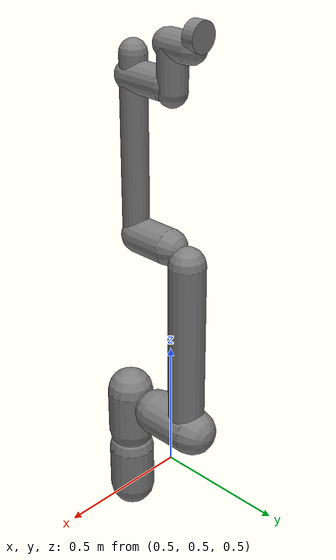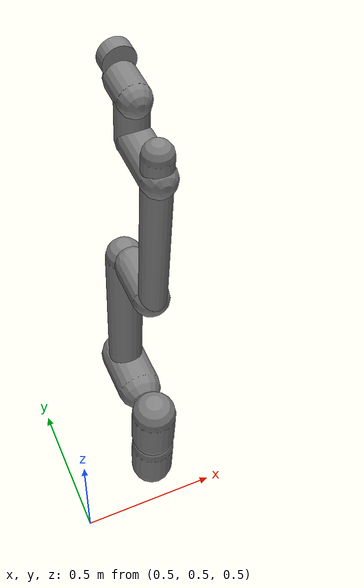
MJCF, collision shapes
<mujoco model="ur30">
  <compiler angle="radian" meshdir="../universal_robots_ur30/assets" autolimits="true"/>
  <option integrator="implicitfast"/>

  <default>
    <include file="../universal_robots_ur30/ur30_classes.xml"/>
  </default>

  <asset>
    <include file="../universal_robots_ur30/ur30_assets.xml" />
  </asset>

  <worldbody>
    <light name="spotlight" mode="targetbodycom" target="wrist_2_link" pos="0 -1 2"/>
    <body name="ur30_base" pos="0.8 0.6 0.745" quat="1 0 0 0" childclass="ur30">
      <inertial mass="4.0" pos="0 0 0" diaginertia="0.00443333156 0.00443333156 0.0072"/>
      <!-- fix duplicate definition, add base_0 -->
      <geom mesh="base_0" material="black" class="visual"/>
      <geom mesh="base_1" material="black" class="visual"/>
      <geom mesh="base_2" material="black" class="visual"/>
      <geom mesh="base_3" material="black" class="visual"/>
      <geom mesh="base_4" material="jointgray" class="visual"/>
      <geom mesh="base_5" material="jointgray" class="visual"/>
      <geom mesh="base_6" material="jointgray" class="visual"/>
      <!-- add collision geometry -->
      <geom class="collision" size="0.078 0.08" pos="0 0 -0.05"/>

      <body name="shoulder_link" pos="0 0 0.2363">
        <inertial pos="0 0 0" mass="16.343" diaginertia="0.0102675 0.0102675 0.00666" />
        <joint name="shoulder_pan_joint" class="size4" axis="0 0 1"/>
        <geom mesh="shoulder_0" material="urblue" class="visual"/>
        <geom mesh="shoulder_1" material="black" class="visual"/>
        <geom mesh="shoulder_2" material="jointgray" class="visual"/>
        <!-- add collision geometry -->
        <geom class="collision" size="0.078 0.08" pos="0 0 -0.05"/>

        <body name="upper_arm_link" pos="0 0.2629 0" quat="1 0 0 0">
          <inertial pos="0 0 -0.3185" mass="28.542" diaginertia="0.133886 0.133886 0.0151074" />
          <joint name="shoulder_lift_joint" class="size4"/>
          <geom mesh="upperarm_0" material="jointgray" class="visual"/>
          <geom mesh="upperarm_1" material="jointgray" class="visual"/>
          <geom mesh="upperarm_2" material="urblue" class="visual"/>
          <geom mesh="upperarm_3" material="black" class="visual"/>
          <geom mesh="upperarm_4" material="jointgray" class="visual"/>
          <geom mesh="upperarm_5" material="linkgray" class="visual"/>
          <!-- add collision geometry -->
          <geom class="collision" pos="0 -0.05 0" quat="1 1 0 0" size="0.078 0.08"/>
          <geom class="collision" size="0.06 0.3" pos="0 0 0.3"/>

          <body name="forearm_link" pos="0 -0.2197 0.637">
            <inertial pos="0 0 -0.25185" mass="7.156" diaginertia="0.0311796 0.0311796 0.004095" />
            <joint name="elbow_joint" class="size3_limited"/>
            <geom mesh="forearm_0" material="urblue" class="visual"/>
            <geom mesh="forearm_1" material="linkgray" class="visual"/>
            <geom mesh="forearm_2" material="urblue" class="visual"/>
            <geom mesh="forearm_3" material="urblue" class="visual"/>
            <geom mesh="forearm_4" material="jointgray" class="visual"/>
            <geom mesh="forearm_5" material="urblue" class="visual"/>
            <geom mesh="forearm_6" material="black" class="visual"/>
            <!-- add collision geometry -->
            <geom class="collision" pos="0 0.08 0" quat="1 1 0 0" size="0.058 0.065"/>
            <geom class="collision" size="0.043 0.28" pos="0 0 0.29"/>

            <body name="wrist_1_link" pos="0 0 0.5037" quat="1 0 0 0">
              <inertial pos="0 0.1578 0" quat="0.5 0.5 -0.5 0.5" mass="3.054" diaginertia="0.0025599 0.0025599 0.0021942" />
              <joint name="wrist_1_joint" class="size2"/>
              <geom mesh="wrist1_0" material="black" class="visual"/>
              <geom mesh="wrist1_1" material="black" class="visual"/>
              <geom mesh="wrist1_2" material="jointgray" class="visual"/>
              <geom mesh="wrist1_3" material="jointgray" class="visual"/>
              <geom mesh="wrist1_4" material="urblue" class="visual"/>
              <!-- add collision geometry -->
              <geom class="collision" pos="0 0.06 0" quat="1 1 0 0" size="0.05 0.07"/>

              <body name="wrist_2_link" pos="0 0.1578 0">
                <inertial pos="0 0 0.1593" quat="0.5 0.5 -0.5 0.5" mass="3.126" diaginertia="0.0025599 0.0025599 0.0021942" />
                <joint name="wrist_2_joint" class="size2" axis="0 0 1"/>
                <geom mesh="wrist2_0" material="black" class="visual"/>
                <geom mesh="wrist2_1" material="black" class="visual"/>
                <geom mesh="wrist2_2" material="jointgray" class="visual"/>
                <geom mesh="wrist2_3" material="jointgray" class="visual"/>
                <geom mesh="wrist2_4" material="jointgray" class="visual"/>
                <geom mesh="wrist2_5" material="jointgray" class="visual"/>
                <!-- 添加碰撞几何体 -->
                <geom class="collision" size="0.046 0.065" pos="0 0 0.05"/>
                <geom class="collision" pos="0 0.028 0.12" quat="1 1 0 0" size="0.046 0.043"/>

                <body name="wrist_3_link" pos="0 0 0.1593">
                  <inertial pos="0 0.129316 0" quat="0.5 0.5 -0.5 0.5" mass="0.927" diaginertia="0.000132134 9.90863e-05 9.90863e-05" />
                  <joint name="wrist_3_joint" class="size2"/>
                  <geom mesh="wrist3_0" material="linkgray" class="visual"/>
                  <geom mesh="wrist3_1" material="linkgray" class="visual"/>
                  <geom mesh="wrist3_2" material="linkgray" class="visual"/>
                  <geom mesh="wrist3_3" material="linkgray" class="visual"/>
                  <geom mesh="wrist3_4" material="linkgray" class="visual"/>
                  <!-- 添加碰撞几何体 -->
                  <geom class="eef_collision" pos="0 0.097 0" quat="1 1 0 0" size="0.046 0.02"/>
                  <site name="attachment_site" pos="0 0.1 0" quat="-1 1 0 0"/>

                  <!-- 添加手部相机，参考UR5e -->
                  <camera name="hand_camera" pos="0 0.1 0.2" xyaxes="-1 0 0 0 -1 -1" mode="fixed"/>

                  <!-- 添加flange身体用于夹爪连接 -->
                  <body name="flange" pos="0 0.1 0" quat="1 -1 0 0">
                    <site name="tcp" pos="0 0 0" size="0.01" rgba="0 1 0 0.5" group="2" />
                  </body>
                </body>
              </body>
            </body>
          </body>
        </body>
      </body>
    </body>
  </worldbody>

  <actuator>
    <general class="size4" name="shoulder_pan" joint="shoulder_pan_joint"/>
    <general class="size4" name="shoulder_lift" joint="shoulder_lift_joint"/>
    <general class="size3_limited" name="elbow" joint="elbow_joint"/>
    <general class="size2" name="wrist_1" joint="wrist_1_joint"/>
    <general class="size2" name="wrist_2" joint="wrist_2_joint"/>
    <general class="size2" name="wrist_3" joint="wrist_3_joint"/>
  </actuator>

  <!-- 暂时注释掉关键帧，避免关节数量不匹配 -->
</mujoco>

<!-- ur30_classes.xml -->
<mujocoinclude>
  <default class="ur30">
    <material specular="0.5" shininess="0.25" />
    <joint axis="0 1 0" range="-6.28319 6.28319" armature="0.1" />
    <general gaintype="fixed" biastype="affine" ctrlrange="-6.2831 6.2831"
             gainprm="5000" biasprm="0 -5000 -500" forcerange="-330 330" />
    <default class="size4">
      <joint damping="10"/>
      <general forcerange="-330 330"/>
    </default>
    <default class="size3">
      <joint damping="5"/>
      <general forcerange="-150 150"/>
      <default class="size3_limited">
        <joint range="-3.1415 3.1415" />
        <general ctrlrange="-3.1415 3.1415" />
      </default>
    </default>
    <default class="size2">
      <joint damping="2"/>
      <general forcerange="-56 56"/>
    </default>
    <default class="size1">
      <general gainprm="500" biasprm="0 -500 -100" forcerange="-28 28" />
    </default>
    <default class="visual">
      <geom type="mesh" contype="0" conaffinity="0" group="2" />
    </default>
    <default class="collision">
      <geom type="capsule" group="3" />
      <default class="eef_collision">
        <geom type="cylinder" />
      </default>
    </default>
    <site size="0.001" rgba="0.5 0.5 0.5 0.3" group="4" />
  </default>
</mujocoinclude>

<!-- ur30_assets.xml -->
<mujocoinclude>
  <material name="black" rgba="0.033 0.033 0.033 1" />
  <material name="jointgray" rgba="0.278 0.278 0.278 1" />
  <material name="linkgray" rgba="0.82 0.82 0.82 1" />
  <material name="urblue" rgba="0.49 0.678 0.8 1" />
  <mesh file="base_0.obj" name="base_0"/>
  <mesh file="base_1.obj" name="base_1"/>
  <mesh file="base_2.obj" name="base_2"/>
  <mesh file="base_3.obj" name="base_3"/>
  <mesh file="base_4.obj" name="base_4"/>
  <mesh file="base_5.obj" name="base_5"/>
  <mesh file="base_6.obj" name="base_6"/>
  <mesh file="shoulder_0.obj" name="shoulder_0"/>
  <mesh file="shoulder_1.obj" name="shoulder_1"/>
  <mesh file="shoulder_2.obj" name="shoulder_2"/>
  <mesh file="upperarm_0.obj" name="upperarm_0"/>
  <mesh file="upperarm_1.obj" name="upperarm_1"/>
  <mesh file="upperarm_2.obj" name="upperarm_2"/>
  <mesh file="upperarm_3.obj" name="upperarm_3"/>
  <mesh file="upperarm_4.obj" name="upperarm_4"/>
  <mesh file="upperarm_5.obj" name="upperarm_5"/>
  <mesh file="forearm_0.obj" name="forearm_0"/>
  <mesh file="forearm_1.obj" name="forearm_1"/>
  <mesh file="forearm_2.obj" name="forearm_2"/>
  <mesh file="forearm_3.obj" name="forearm_3"/>
  <mesh file="forearm_4.obj" name="forearm_4"/>
  <mesh file="forearm_5.obj" name="forearm_5"/>
  <mesh file="forearm_6.obj" name="forearm_6"/>
  <mesh file="wrist1_0.obj" name="wrist1_0"/>
  <mesh file="wrist1_1.obj" name="wrist1_1"/>
  <mesh file="wrist1_2.obj" name="wrist1_2"/>
  <mesh file="wrist1_3.obj" name="wrist1_3"/>
  <mesh file="wrist1_4.obj" name="wrist1_4"/>
  <mesh file="wrist2_0.obj" name="wrist2_0"/>
  <mesh file="wrist2_1.obj" name="wrist2_1"/>
  <mesh file="wrist2_2.obj" name="wrist2_2"/>
  <mesh file="wrist2_3.obj" name="wrist2_3"/>
  <mesh file="wrist2_4.obj" name="wrist2_4"/>
  <mesh file="wrist2_5.obj" name="wrist2_5"/>
  <mesh file="wrist3_0.obj" name="wrist3_0"/>
  <mesh file="wrist3_1.obj" name="wrist3_1"/>
  <mesh file="wrist3_2.obj" name="wrist3_2"/>
  <mesh file="wrist3_3.obj" name="wrist3_3"/>
  <mesh file="wrist3_4.obj" name="wrist3_4"/>
</mujocoinclude>
